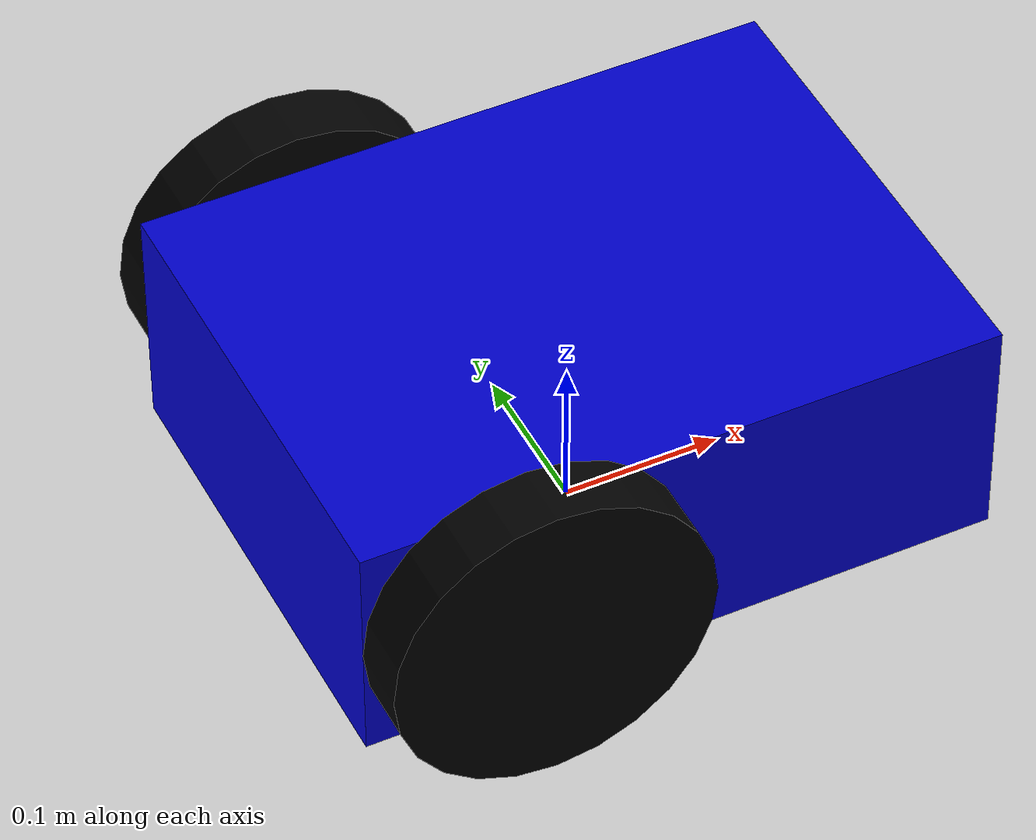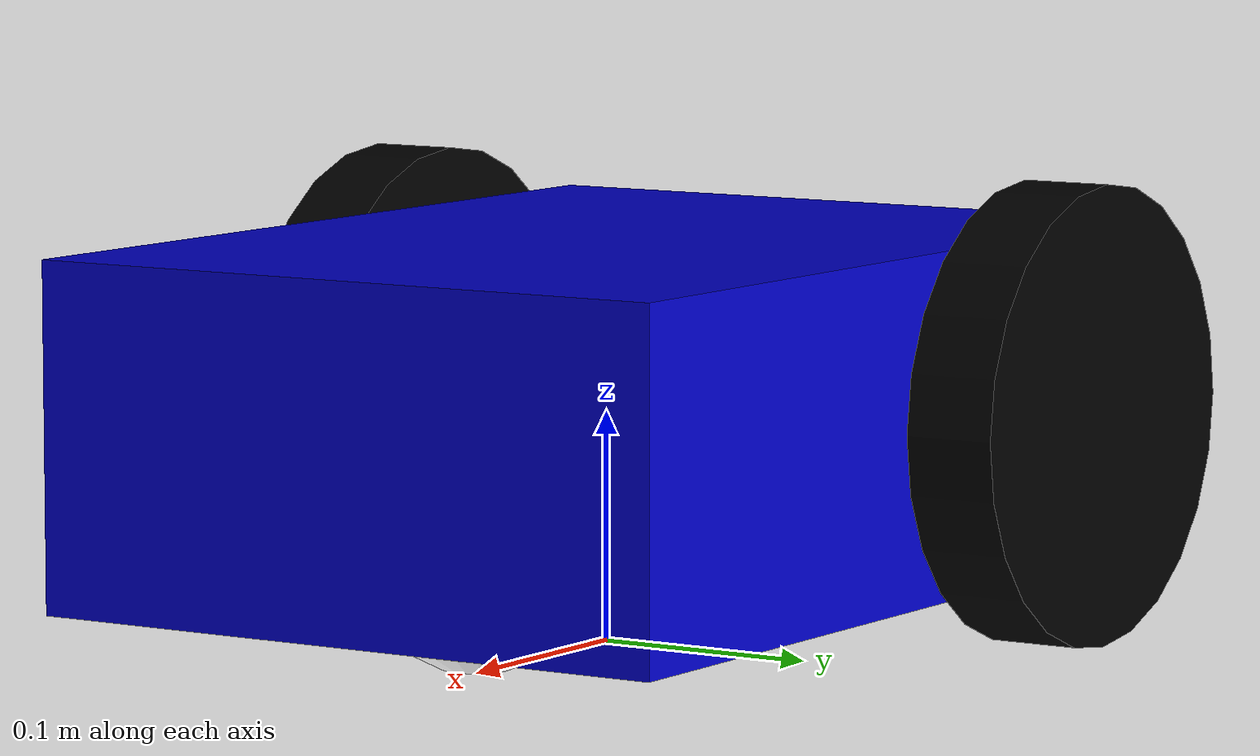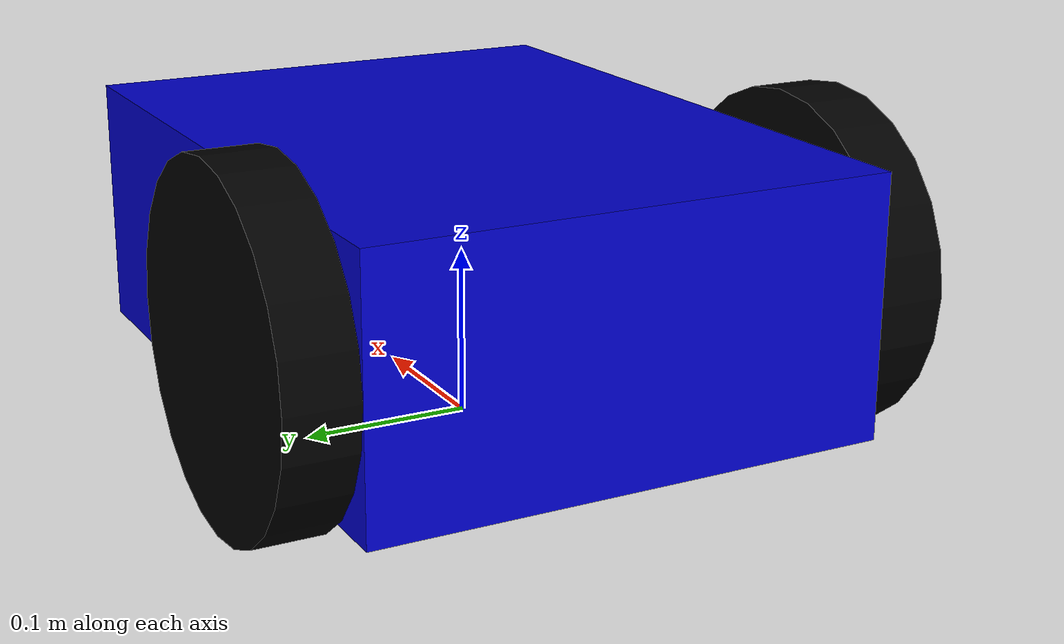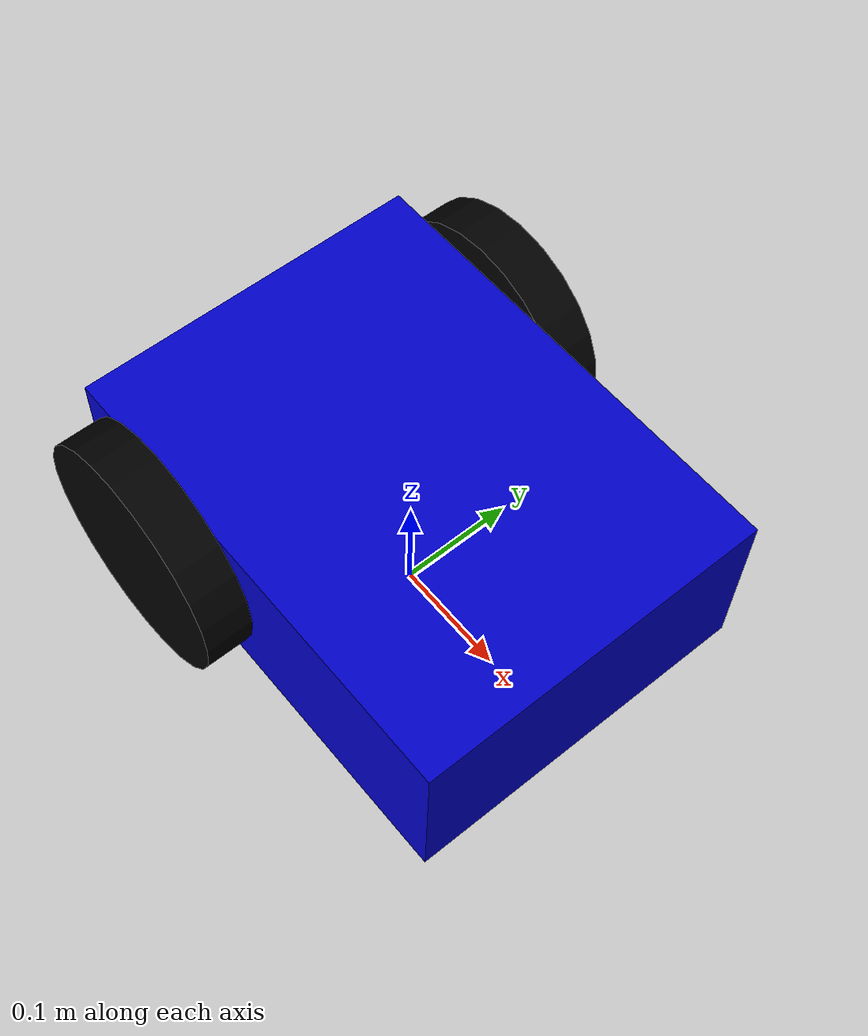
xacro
<?xml version="1.0"?>
<robot xmlns:xacro="http://www.ros.org/wiki/xacro">

  <xacro:include filename="materials.xacro" />

  <!-- Constants -->
  <xacro:property name="chassis_length" value="0.4"/>
  <xacro:property name="chassis_width" value="0.3"/>
  <xacro:property name="chassis_height" value="0.15"/>
  <xacro:property name="wheel_radius" value="0.1"/>
  <xacro:property name="wheel_width" value="0.04"/>
  <xacro:property name="wheel_offset" value="0.17"/>

  <!-- Base footprint (ground projection) -->
  <link name="base_footprint"/>

  <joint name="base_footprint_joint" type="fixed">
    <parent link="base_footprint"/>
    <child link="base_link"/>
    <origin xyz="0 0 ${wheel_radius}" rpy="0 0 0"/>
  </joint>

  <!-- Base Link -->
  <link name="base_link">
    <visual>
      <geometry>
        <box size="${chassis_length} ${chassis_width} ${chassis_height}"/>
      </geometry>
      <material name="blue"/>
    </visual>
    <collision>
      <geometry>
        <box size="${chassis_length} ${chassis_width} ${chassis_height}"/>
      </geometry>
    </collision>
    <inertial>
      <mass value="1.0"/>
      <inertia ixx="0.1" ixy="0.0" ixz="0.0" iyy="0.1" iyz="0.0" izz="0.1"/>
    </inertial>
  </link>

  <!-- Wheels -->
  <link name="left_wheel">
    <visual>
      <geometry>
        <cylinder radius="${wheel_radius}" length="${wheel_width}"/>
      </geometry>
      <material name="black"/>
    </visual>
    <collision>
      <geometry>
        <cylinder radius="${wheel_radius}" length="${wheel_width}"/>
      </geometry>
    </collision>
    <inertial>
      <mass value="0.1"/>
      <inertia ixx="0.0001" ixy="0.0" ixz="0.0" iyy="0.0001" iyz="0.0" izz="0.0001"/>
    </inertial>
  </link>

  <joint name="left_wheel_joint" type="continuous">
    <parent link="base_link"/>
    <child link="left_wheel"/>
    <origin xyz="-${chassis_length/4} ${wheel_offset} 0" rpy="-${pi/2} 0 0"/>
    <axis xyz="0 0 1"/>
  </joint>

  <link name="right_wheel">
    <visual>
      <geometry>
        <cylinder radius="${wheel_radius}" length="${wheel_width}"/>
      </geometry>
      <material name="black"/>
    </visual>
    <collision>
      <geometry>
        <cylinder radius="${wheel_radius}" length="${wheel_width}"/>
      </geometry>
    </collision>
    <inertial>
      <mass value="0.1"/>
      <inertia ixx="0.0001" ixy="0.0" ixz="0.0" iyy="0.0001" iyz="0.0" izz="0.0001"/>
    </inertial>
  </link>

  <joint name="right_wheel_joint" type="continuous">
    <parent link="base_link"/>
    <child link="right_wheel"/>
    <origin xyz="-${chassis_length/4} -${wheel_offset} 0" rpy="-${pi/2} 0 0"/>
    <axis xyz="0 0 1"/>
  </joint>

  <!-- Caster -->
  <link name="caster_wheel">
    <visual>
      <geometry>
        <sphere radius="${wheel_radius/2}"/>
      </geometry>
      <material name="white"/>
    </visual>
    <collision>
      <geometry>
        <sphere radius="${wheel_radius/2}"/>
      </geometry>
    </collision>
    <inertial>
      <mass value="0.05"/>
      <inertia ixx="0.00001" ixy="0.0" ixz="0.0" iyy="0.00001" iyz="0.0" izz="0.00001"/>
    </inertial>
  </link>

  <joint name="caster_wheel_joint" type="fixed">
    <parent link="base_link"/>
    <child link="caster_wheel"/>
    <origin xyz="${chassis_length/2 - wheel_radius} 0 -${wheel_radius/2}" rpy="0 0 0"/>
  </joint>

  <!-- Gazebo Physics and Plugins -->
  <gazebo reference="base_link">
    <material>Gazebo/Blue</material>
  </gazebo>

  <gazebo reference="left_wheel">
    <material>Gazebo/Black</material>
    <mu1 value="1.0"/>
    <mu2 value="1.0"/>
    <kp value="10000000.0"/>
    <kd value="1.0"/>
    <fdir1 value="1 0 0"/>
  </gazebo>

  <gazebo reference="right_wheel">
    <material>Gazebo/Black</material>
    <mu1 value="1.0"/>
    <mu2 value="1.0"/>
    <kp value="10000000.0"/>
    <kd value="1.0"/>
    <fdir1 value="1 0 0"/>
  </gazebo>

  <gazebo reference="caster_wheel">
    <material>Gazebo/White</material>
    <mu1 value="0.001"/>
    <mu2 value="0.001"/>
  </gazebo>

  <gazebo>
    <plugin
      filename="gz-sim-diff-drive-system"
      name="gz::sim::systems::DiffDrive">
      <left_joint>left_wheel_joint</left_joint>
      <right_joint>right_wheel_joint</right_joint>
      <wheel_separation>${chassis_width + wheel_width}</wheel_separation>
      <wheel_radius>${wheel_radius}</wheel_radius>
      <odom_publish_frequency>30</odom_publish_frequency>
      <topic>cmd_vel</topic>
      <odom_topic>odom</odom_topic>
      <tf_topic>tf</tf_topic>
      <frame_id>odom</frame_id>
      <child_frame_id>base_footprint</child_frame_id>
    </plugin>

    <plugin
      filename="gz-sim-joint-state-publisher-system"
      name="gz::sim::systems::JointStatePublisher">
      <topic>joint_states</topic>
    </plugin>
  </gazebo>

</robot>

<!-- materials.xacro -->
<robot xmlns:xacro="http://www.ros.org/wiki/xacro">

  <material name="blue">
    <color rgba="0 0 0.8 1"/>
  </material>

  <material name="black">
    <color rgba="0 0 0 1"/>
  </material>

  <material name="white">
    <color rgba="1 1 1 1"/>
  </material>

  <material name="red">
    <color rgba="0.8 0 0 1"/>
  </material>

</robot>
